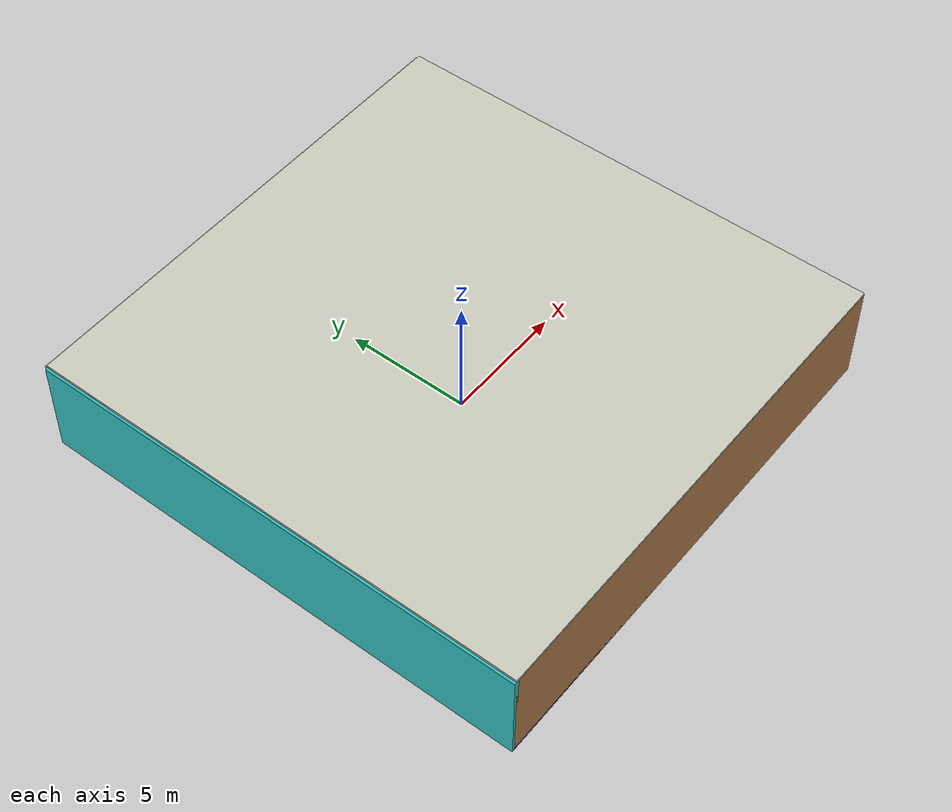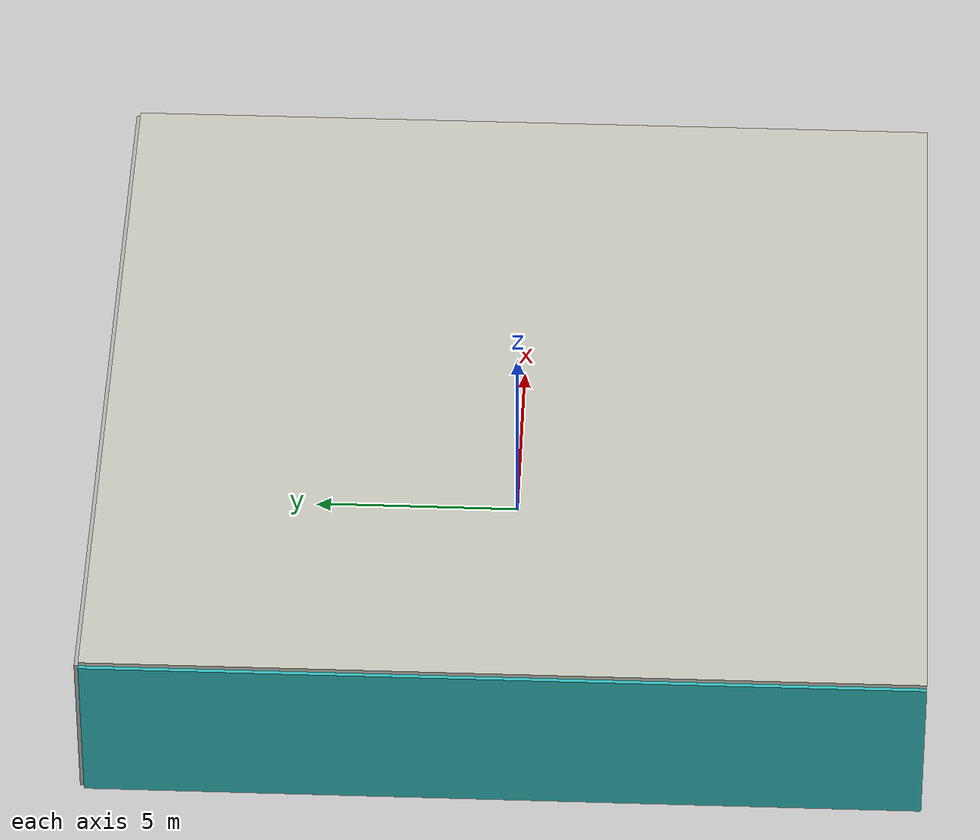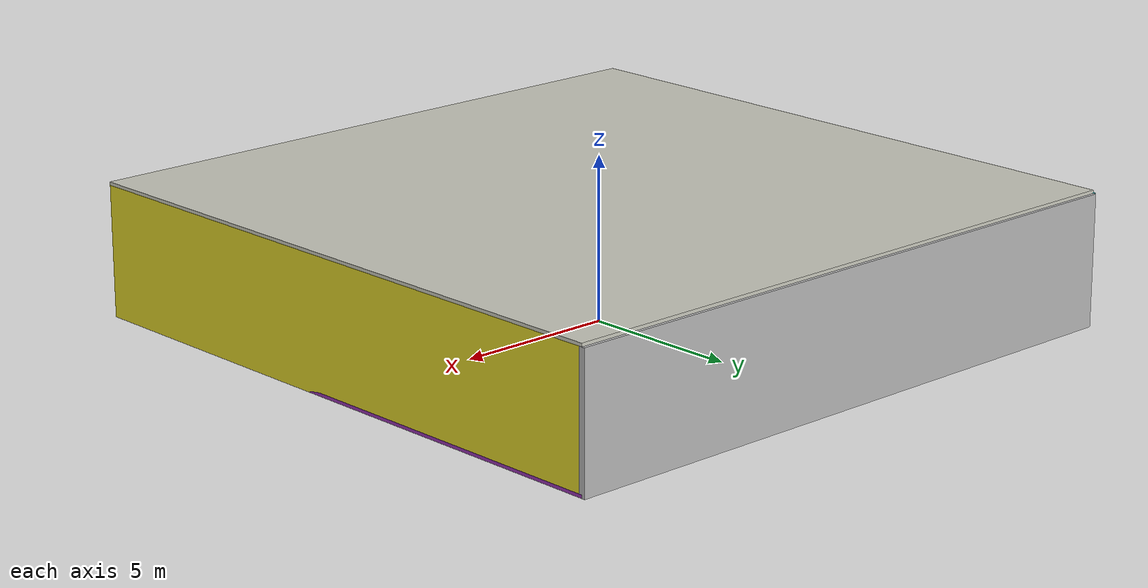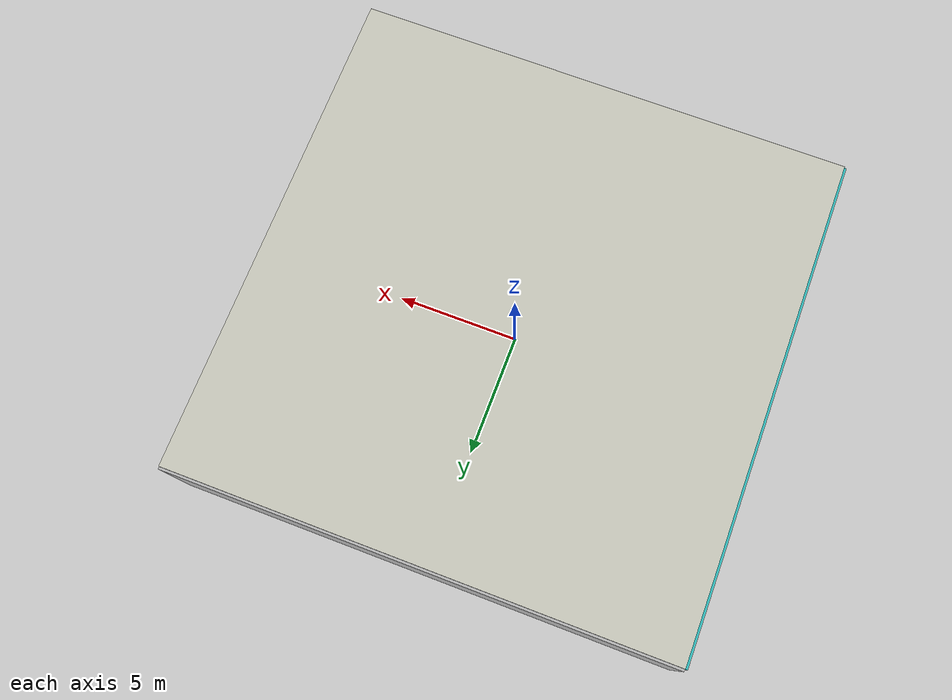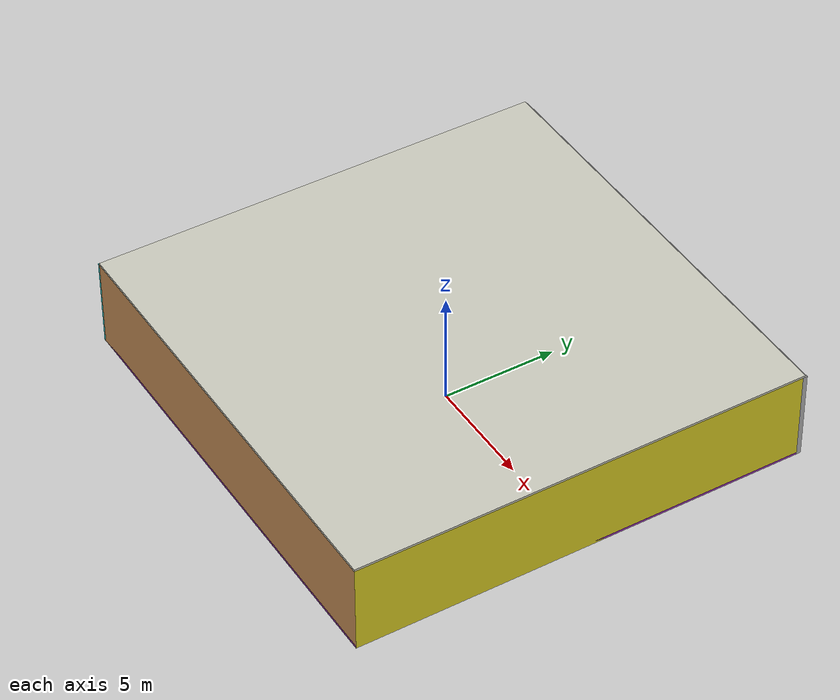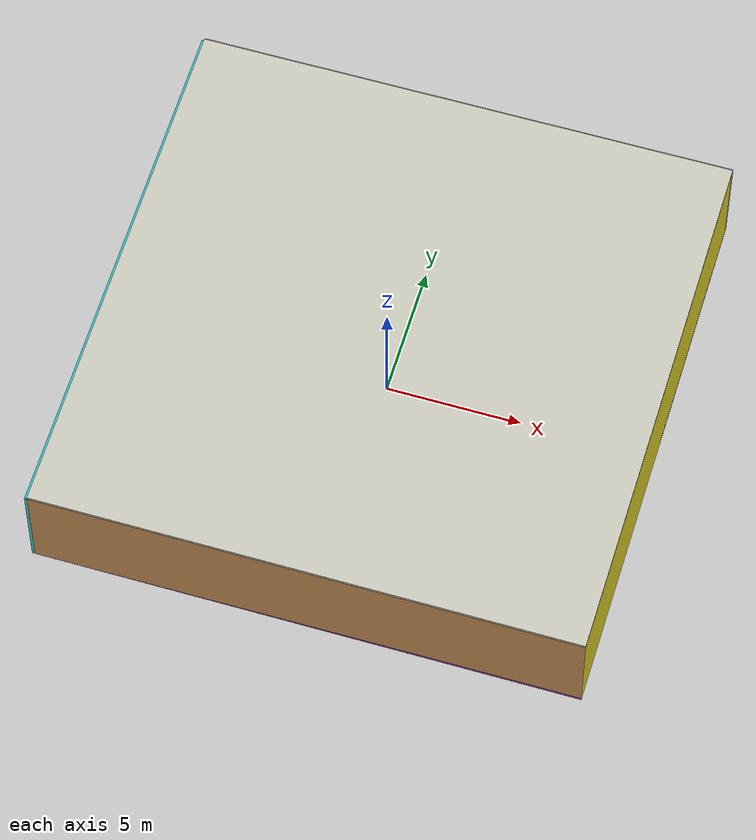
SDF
<sdf version="1.4">
 <world name="default">
  <physics type="ode">
   <max_step_size>0.001</max_step_size>
   <real_time_factor>1</real_time_factor>
   <real_time_update_rate>1000</real_time_update_rate>
   <gravity>0 0 -9.8</gravity>
  </physics>
  <scene><ambient>0.4 0.4 0.4 1</ambient><background>0.7 0.7 0.7 1</background><shadows>1</shadows></scene>
  <model name="Surrounding">
   <static>1</static>
   <link name="Ceiling">
    <collision name="Ceiling_Collision"><geometry><box><size>20 20 0.1</size></box></geometry></collision>
    <visual name="Ceiling_Visual">
     <geometry><box><size>20 20 0.1</size></box></geometry>
     <material>
      <script><uri>file://media/materials/scripts/gazebo.material</uri><name>Gazebo/PaintedWall</name></script>
     </material>
    </visual>
    <pose>0 0 4.05 0 0 0</pose>
   </link>
   <link name="Wall_South">
    <collision name="Wall_South_Collision">
     <geometry><box><size>20 0 4</size></box></geometry>
     <pose>0 0 2 0 -0 0</pose>
    </collision>
    <visual name="Wall_South_Visual">
     <pose>0 0 2 0 -0 0</pose>
     <geometry><box><size>20 0 4</size></box></geometry>
     <material>
      <script><uri>file://media/materials/scripts/gazebo.material</uri><name>Gazebo/WoodFloor</name></script>
     </material>
    </visual>
    <velocity_decay><linear>0</linear><angular>0</angular></velocity_decay>
    <pose>0 -10 0 0 -0 0</pose>
   </link>
   <link name="Wall_East">
    <collision name="Wall_21_Collision">
     <geometry><box><size>20 0 4</size></box></geometry>
     <pose>0 0 2 0 -0 0</pose>
    </collision>
    <visual name="Wall_21_Visual">
     <pose>0 0 2 0 -0 0</pose>
     <geometry><box><size>20 0 4</size></box></geometry>
     <material>
      <script><uri>file://media/materials/scripts/gazebo.material</uri><name>Gazebo/YellowGlow</name></script>
     </material>
    </visual>
    <velocity_decay><linear>0</linear><angular>0</angular></velocity_decay>
    <pose>10 0 0 0 -0 1.5708</pose>
   </link>
   <link name="Wall_North">
    <collision name="Wall_22_Collision">
     <geometry><box><size>20 0.2 4</size></box></geometry>
     <pose>0 0 2 0 -0 0</pose>
    </collision>
    <visual name="Wall_22_Visual">
     <pose>0 0 2 0 -0 0</pose>
     <geometry><box><size>20 0.2 4</size></box></geometry>
     <material>
      <script><uri>file://media/materials/scripts/gazebo.material</uri><name>Gazebo/LightOff</name></script>
     </material>
    </visual>
    <velocity_decay><linear>0</linear><angular>0</angular></velocity_decay>
    <pose>0 10 0 0 -0 0</pose>
   </link>
   <link name="Wall_West">
    <collision name="Wall_23_Collision">
     <geometry><box><size>20 0.2 4</size></box></geometry>
     <pose>0 0 2 0 -0 0</pose>
    </collision>
    <visual name="Wall_23_Visual">
     <pose>0 0 2 0 -0 0</pose>
     <geometry><box><size>20 0.2 4</size></box></geometry>
     <material>
      <script><uri>file://media/materials/scripts/gazebo.material</uri><name>Gazebo/TurquoiseGlow</name></script>
     </material>
    </visual>
    <velocity_decay><linear>0</linear><angular>0</angular></velocity_decay>
    <pose>-10 0 0 0 0 -1.5708</pose>
   </link>
   <link name="Ground_link">
    <collision name="collision">
     <pose>0 0 .05 0 -0 0</pose>
     <geometry><box><size>20 20 0.1</size></box></geometry>
    </collision>
    <visual name="visual">
     <pose>0 0 .05 0 -0 0</pose>
     <geometry><box><size>20 20 0.1</size></box></geometry>
     <material>
      <script><uri>file://media/materials/scripts/gazebo.material</uri><name>Gazebo/Purple</name></script>
     </material>
    </visual>
   </link>
   <static>1</static>
  </model>
  <spherical_coordinates>
   <surface_model>EARTH_WGS84</surface_model>
   <latitude_deg>0</latitude_deg>
   <longitude_deg>0</longitude_deg>
   <elevation>0</elevation>
   <heading_deg>0</heading_deg>
  </spherical_coordinates>
  <light name="lightball_0" type="diffuse">
   <diffuse>0.8 0.8 0.8 1</diffuse>
   <specular>0.2 0.2 0.2 1</specular>
   <attenuation>
    <range>100</range>
    <constant>0.7</constant>
    <linear>0.01</linear>
    <quadratic>0.001</quadratic>
   </attenuation>
   <direction>-0.5 0.1 -0.9</direction>
   <pose>-8.00309793834 0.639562791726 3.16308015273 0 0 0</pose>
  </light>
  <light name="lightball_1" type="diffuse">
   <diffuse>0.8 0.8 0.8 1</diffuse>
   <specular>0.2 0.2 0.2 1</specular>
   <attenuation>
    <range>100</range>
    <constant>0.7</constant>
    <linear>0.01</linear>
    <quadratic>0.001</quadratic>
   </attenuation>
   <direction>-0.5 0.1 -0.9</direction>
   <pose>-0.85685620942 -2.40931426217 3.3060490037 0 0 0</pose>
  </light>
  <light name="lightball_2" type="diffuse">
   <diffuse>0.8 0.8 0.8 1</diffuse>
   <specular>0.2 0.2 0.2 1</specular>
   <attenuation>
    <range>100</range>
    <constant>0.7</constant>
    <linear>0.01</linear>
    <quadratic>0.001</quadratic>
   </attenuation>
   <direction>-0.5 0.1 -0.9</direction>
   <pose>9.2143983341 -4.40585109249 2.22325358431 0 0 0</pose>
  </light>
  <light name="lightball_3" type="diffuse">
   <diffuse>0.8 0.8 0.8 1</diffuse>
   <specular>0.2 0.2 0.2 1</specular>
   <attenuation>
    <range>100</range>
    <constant>0.7</constant>
    <linear>0.01</linear>
    <quadratic>0.001</quadratic>
   </attenuation>
   <direction>-0.5 0.1 -0.9</direction>
   <pose>-3.1295886803 -3.47044515744 1.86647288977 0 0 0</pose>
  </light>
  <light name="lightball_4" type="diffuse">
   <diffuse>0.8 0.8 0.8 1</diffuse>
   <specular>0.2 0.2 0.2 1</specular>
   <attenuation>
    <range>100</range>
    <constant>0.7</constant>
    <linear>0.01</linear>
    <quadratic>0.001</quadratic>
   </attenuation>
   <direction>-0.5 0.1 -0.9</direction>
   <pose>6.15214120433 -8.07713215531 0.682679356067 0 0 0</pose>
  </light>
  <light name="lightball_5" type="diffuse">
   <diffuse>0.8 0.8 0.8 1</diffuse>
   <specular>0.2 0.2 0.2 1</specular>
   <attenuation>
    <range>100</range>
    <constant>0.7</constant>
    <linear>0.01</linear>
    <quadratic>0.001</quadratic>
   </attenuation>
   <direction>-0.5 0.1 -0.9</direction>
   <pose>-2.2934017806 -8.9237403343 0.98440999029 0 0 0</pose>
  </light>
  <include>
   <uri>model://construction_cone</uri>
   <pose>-6.75471150041 4.21199770866 0 0 0 0.668655617264</pose>
  </include>
  <include><uri>model://table</uri><pose>-4.23124366237 6.76305502248 0 0 0 3.01131027255</pose></include>
  <include><uri>model://table</uri><pose>-2.41906451116 -7.32632570327 0 0 0 0.410413409745</pose></include>
  <include>
   <uri>model://robocup_3Dsim_goal</uri>
   <pose>0.998794489129 -2.42387988009 0 0 0 1.42246575101</pose>
  </include>
  <include>
   <uri>model://construction_cone</uri>
   <pose>1.79048158192 1.31462522249 0 0 0 2.21997679873</pose>
  </include>
  <include>
   <uri>model://robocup_3Dsim_goal</uri>
   <pose>1.61939730268 5.34063421098 0 0 0 1.89139977902</pose>
  </include>
  <include>
   <uri>model://robocup_3Dsim_goal</uri>
   <pose>7.8623644768 -6.56903307002 0 0 0 1.58638781511</pose>
  </include>
  <include><uri>model://cabinet</uri><pose>6.57255553711 -2.37180252423 0 0 0 1.17248524657</pose></include>
 </world>
</sdf>

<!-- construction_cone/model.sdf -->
<sdf version="1.5">
  <model name="Construction Cone">
    <link name="link">
      <collision name="collision">
        <geometry>
          <mesh>
            <scale>10 10 10</scale>
            <uri>file://isr-testbed/construction_cone/meshes/construction_cone.dae</uri>
          </mesh>
        </geometry>
      </collision>
      <visual name="visual">
        <geometry>
          <mesh>
            <scale>10 10 10</scale>
            <uri>file://isr-testbed/construction_cone/meshes/construction_cone.dae</uri>
          </mesh>
        </geometry>
      </visual>
    </link>
  </model>
</sdf>

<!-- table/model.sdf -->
<sdf version="1.5">
  <model name="table">
    <static>true</static>
    <link name="link">
      <collision name="surface">
        <pose>0 0 1.0 0 0 0</pose>
        <geometry>
          <box>
            <size>1.5 0.8 0.03</size>
          </box>
        </geometry>
        <surface>
          <friction>
            <ode>
              <mu>0.6</mu>
              <mu2>0.6</mu2>
            </ode>
          </friction>
        </surface>
      </collision>
      <visual name="visual1">
        <pose>0 0 1.0 0 0 0</pose>
        <geometry>
          <box>
            <size>1.5 0.8 0.03</size>
          </box>
        </geometry>
        <material>
          <script>
            <uri>model://media/materials/scripts/gazebo.material</uri>
            <name>Gazebo/Wood</name>
          </script>
        </material>
      </visual>
      <collision name="front_left_leg">
        <pose>0.68 0.38 0.5 0 0 0</pose>
        <geometry>
          <cylinder>
            <radius>0.02</radius>
            <length>1.0</length>
          </cylinder>
        </geometry>
      </collision>
      <visual name="front_left_leg">
        <pose>0.68 0.38 0.5 0 0 0</pose>
        <geometry>
          <cylinder>
            <radius>0.02</radius>
            <length>1.0</length>
          </cylinder>
        </geometry>
        <material>
          <script>
            <uri>model://media/materials/scripts/gazebo.material</uri>
            <name>Gazebo/Grey</name>
          </script>
        </material>
      </visual>
      <collision name="front_right_leg">
        <pose>0.68 -0.38 0.5 0 0 0</pose>
        <geometry>
          <cylinder>
            <radius>0.02</radius>
            <length>1.0</length>
          </cylinder>
        </geometry>
      </collision>
      <visual name="front_right_leg">
        <pose>0.68 -0.38 0.5 0 0 0</pose>
        <geometry>
          <cylinder>
            <radius>0.02</radius>
            <length>1.0</length>
          </cylinder>
        </geometry>
        <material>
          <script>
            <uri>model://media/materials/scripts/gazebo.material</uri>
            <name>Gazebo/Grey</name>
          </script>
        </material>
      </visual>
      <collision name="back_right_leg">
        <pose>-0.68 -0.38 0.5 0 0 0</pose>
        <geometry>
          <cylinder>
            <radius>0.02</radius>
            <length>1.0</length>
          </cylinder>
        </geometry>
      </collision>
      <visual name="back_right_leg">
        <pose>-0.68 -0.38 0.5 0 0 0</pose>
        <geometry>
          <cylinder>
            <radius>0.02</radius>
            <length>1.0</length>
          </cylinder>
        </geometry>
        <material>
          <script>
            <uri>model://media/materials/scripts/gazebo.material</uri>
            <name>Gazebo/Grey</name>
          </script>
        </material>
      </visual>
      <collision name="back_left_leg">
        <pose>-0.68 0.38 0.5 0 0 0</pose>
        <geometry>
          <cylinder>
            <radius>0.02</radius>
            <length>1.0</length>
          </cylinder>
        </geometry>
      </collision>
      <visual name="back_left_leg">
        <pose>-0.68 0.38 0.5 0 0 0</pose>
        <geometry>
          <cylinder>
            <radius>0.02</radius>
            <length>1.0</length>
          </cylinder>
        </geometry>
        <material>
          <script>
            <uri>model://media/materials/scripts/gazebo.material</uri>
            <name>Gazebo/Grey</name>
          </script>
        </material>
      </visual>
    </link>
  </model>
</sdf>

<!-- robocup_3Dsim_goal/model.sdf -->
<sdf version="1.5">
  <model name="robocup_3d_goal">
    <static>true</static>
    <link name="left_post">
      <pose>0 1.05 0.45 0 0 0</pose>
      <collision name="collision">
        <geometry>
          <cylinder>
            <radius>0.05</radius>
            <length>0.9</length>
          </cylinder>
        </geometry>
      </collision>
      <visual name="visual">
        <geometry>
          <cylinder>
            <radius>0.05</radius>
            <length>0.9</length>
          </cylinder>
        </geometry>
        <material>
          <script>
            <uri>file://media/materials/scripts/gazebo.material</uri>
            <name>Gazebo/ZincYellow</name>
          </script>
        </material>
      </visual>
    </link>
    <link name="left_support_horiz_lower">
      <pose>0.30 1.05 0.01 0 0 0</pose>
      <collision name="collision">
        <geometry>
          <box>
            <size>0.50 0.02 0.02</size>
          </box>
        </geometry>
      </collision>
      <visual name="visual">
        <geometry>
          <box>
            <size>0.50 0.02 0.02</size>
          </box>
        </geometry>
        <material>
          <script>
            <uri>file://media/materials/scripts/gazebo.material</uri>
            <name>Gazebo/White</name>
          </script>
        </material>
      </visual>
    </link>
    <link name="left_support_horiz_upper">
      <pose>0.30 1.05 0.79 0 0 0</pose>
      <collision name="collision">
        <geometry>
          <box>
            <size>0.50 0.02 0.02</size>
          </box>
        </geometry>
      </collision>
      <visual name="visual">
        <geometry>
          <box>
            <size>0.50 0.02 0.02</size>
          </box>
        </geometry>
        <material>
          <script>
            <uri>file://media/materials/scripts/gazebo.material</uri>
            <name>Gazebo/White</name>
          </script>
        </material>
      </visual>
    </link>
    <link name="left_support_vertical">
      <pose>0.56 1.05 0.4 0 1.5708 0</pose>
      <collision name="collision">
        <geometry>
          <box>
            <size>0.80 0.02 0.02</size>
          </box>
        </geometry>
      </collision>
      <visual name="visual">
        <geometry>
          <box>
            <size>0.80 0.02 0.02</size>
          </box>
        </geometry>
        <material>
          <script>
            <uri>file://media/materials/scripts/gazebo.material</uri>
            <name>Gazebo/White</name>
          </script>
        </material>
      </visual>
    </link>
    <link name="right_support_horiz_lower">
      <pose>0.30 -1.05 0.01 0 0 0</pose>
      <collision name="collision">
        <geometry>
          <box>
            <size>0.50 0.02 0.02</size>
          </box>
        </geometry>
      </collision>
      <visual name="visual">
        <geometry>
          <box>
            <size>0.50 0.02 0.02</size>
          </box>
        </geometry>
        <material>
          <script>
            <uri>file://media/materials/scripts/gazebo.material</uri>
            <name>Gazebo/White</name>
          </script>
        </material>
      </visual>
    </link>
    <link name="right_support_horiz_upper">
      <pose>0.30 -1.05 0.79 0 0 0</pose>
      <collision name="collision">
        <geometry>
          <box>
            <size>0.50 0.02 0.02</size>
          </box>
        </geometry>
      </collision>
      <visual name="visual">
        <geometry>
          <box>
            <size>0.50 0.02 0.02</size>
          </box>
        </geometry>
        <material>
          <script>
            <uri>file://media/materials/scripts/gazebo.material</uri>
            <name>Gazebo/White</name>
          </script>
        </material>
      </visual>
    </link>
    <link name="right_support_vertical">
      <pose>0.56 -1.05 0.4 0 1.5708 0</pose>
      <collision name="collision">
        <geometry>
          <box>
            <size>0.80 0.02 0.02</size>
          </box>
        </geometry>
      </collision>
      <visual name="visual">
        <geometry>
          <box>
            <size>0.80 0.02 0.02</size>
          </box>
        </geometry>
        <material>
          <script>
            <uri>file://media/materials/scripts/gazebo.material</uri>
            <name>Gazebo/White</name>
          </script>
        </material>
      </visual>
    </link>
    <link name="center_support_horiz_lower">
      <pose>0.56 0 0.01 0 1.5708 0</pose>
      <collision name="collision">
        <geometry>
          <box>
            <size>0.02 2.08 0.02</size>
          </box>
        </geometry>
      </collision>
      <visual name="visual">
        <geometry>
          <box>
            <size>0.02 2.08 0.02</size>
          </box>
        </geometry>
        <material>
          <script>
            <uri>file://media/materials/scripts/gazebo.material</uri>
            <name>Gazebo/White</name>
          </script>
        </material>
      </visual>
    </link>
    <link name="center_support_horiz_upper">
      <pose>0.56 0 0.79 0 1.5708 0</pose>
      <collision name="collision">
        <geometry>
          <box>
            <size>0.02 2.08 0.02</size>
          </box>
        </geometry>
      </collision>
      <visual name="visual">
        <geometry>
          <box>
            <size>0.02 2.08 0.02</size>
          </box>
        </geometry>
        <material>
          <script>
            <uri>file://media/materials/scripts/gazebo.material</uri>
            <name>Gazebo/White</name>
          </script>
        </material>
      </visual>
    </link>
    <link name="right_post">
      <pose>0 -1.05 0.45 0 0 0</pose>
      <collision name="collision">
        <geometry>
          <cylinder>
            <radius>0.05</radius>
            <length>0.9</length>
          </cylinder>
        </geometry>
      </collision>
      <visual name="visual">
        <geometry>
          <cylinder>
            <radius>0.05</radius>
            <length>0.9</length>
          </cylinder>
        </geometry>
        <material>
          <script>
            <uri>file://media/materials/scripts/gazebo.material</uri>
            <name>Gazebo/ZincYellow</name>
          </script>
        </material>
      </visual>
    </link>
    <link name="crossbar">
      <pose>0 0 0.85 1.57 1.57 0</pose>
      <collision name="collision">
        <geometry>
          <cylinder>
            <radius>0.05</radius>
            <length>2.0</length>
          </cylinder>
        </geometry>
      </collision>
      <visual name="visual">
        <geometry>
          <cylinder>
            <radius>0.05</radius>
            <length>2.0</length>
          </cylinder>
        </geometry>
        <material>
          <script>
            <uri>file://media/materials/scripts/gazebo.material</uri>
            <name>Gazebo/ZincYellow</name>
          </script>
        </material>
      </visual>
    </link>
    <link name="center_net">
      <pose>0.56 0 0.40 0 0 0</pose>
      <collision name="collision">
        <geometry>
          <box>
            <size>0.01 2.1 0.80</size>
          </box>
        </geometry>
      </collision>
      <visual name="visual">
        <geometry>
          <box>
            <size>0.01 2.1 0.80</size>
          </box>
        </geometry>
        <material>
          <script>
            <uri>model://../model_source/models/robocup09_spl_field/materials/scripts/</uri>
            <uri>model://../model_source/models/robocup09_spl_field/materials/textures/</uri>
            <name>RoboCup/Net</name>
          </script>
        </material>
      </visual>
    </link>
    <link name="left_net">
      <pose>0.30 1.05 0.40 0 0 0</pose>
      <collision name="collision">
        <geometry>
          <box>
            <size>0.50 0.01 0.76</size>
          </box>
        </geometry>
      </collision>
      <visual name="visual">
        <geometry>
          <box>
            <size>0.50 0.01 0.76</size>
          </box>
        </geometry>
        <material>
          <script>
            <uri>model://../model_source/models/robocup09_spl_field/materials/scripts/</uri>
            <uri>model://../model_source/models/robocup09_spl_field/materials/textures/</uri>
            <name>RoboCup/Net</name>
          </script>
        </material>
      </visual>
    </link>
    <link name="right_net">
      <pose>0.30 -1.05 0.40 0 0 0</pose>
      <collision name="collision">
        <geometry>
          <box>
            <size>0.50 0.01 0.76</size>
          </box>
        </geometry>
      </collision>
      <visual name="visual">
        <geometry>
          <box>
            <size>0.50 0.01 0.76</size>
          </box>
        </geometry>
        <material>
          <script>
            <uri>model://../model_source/models/robocup09_spl_field/materials/scripts/</uri>
            <uri>model://../model_source/models/robocup09_spl_field/materials/textures/</uri>
            <name>RoboCup/Net</name>
          </script>
        </material>
      </visual>
    </link>
  </model>
</sdf>

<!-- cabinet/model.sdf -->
<sdf version="1.5">
  <model name="cabinet">
    <static>true</static>
    <link name="cabinet_bottom_plate">
      <inertial>
        <pose>0 0 -1 0 0 0</pose>
        <inertia>
          <ixx>2.050000</ixx>
          <ixy>0</ixy>
          <ixz>0</ixz>
          <iyy>2.050000</iyy>
          <iyz>0</iyz>
          <izz>2.050000</izz>
        </inertia>
        <mass>25.000000</mass>
      </inertial>
      <collision name="cabinet_bottom_plate_geom">
        <pose>0 0 0.010000 0 0 0</pose>
        <geometry>
          <box>
            <size>0.450000 0.450000 0.020000</size>
          </box>
        </geometry>
      </collision>
      <visual name="cabinet_bottom_plate_geom_visual">
        <pose>0 0 0.010000 0 0 0</pose>
        <geometry>
          <box>
            <size>0.450000 0.450000 0.020000</size>
          </box>
        </geometry>
        <material>
          <script>
            <uri>model://media/materials/scripts/gazebo.material</uri>
            <name>Gazebo/Wood</name>
          </script>
        </material>
      </visual>
      <collision name="cabinet_bottom_plate_geom_cabinet_back_plate">
        <pose>0.235000 0 0.510000 0 0 0</pose>
        <geometry>
          <box>
            <size>0.020000 0.450000 1.020000</size>
          </box>
        </geometry>
      </collision>
      <visual name="cabinet_bottom_plate_geom_cabinet_back_plate_visual">
        <pose>0.235000 0 0.510000 0 0 0</pose>
        <geometry>
          <box>
            <size>0.020000 0.450000 1.020000</size>
          </box>
        </geometry>
        <material>
          <script>
            <uri>model://media/materials/scripts/gazebo.material</uri>
            <name>Gazebo/Wood</name>
          </script>
        </material>
      </visual>
      <collision name="cabinet_bottom_plate_geom_cabinet_left_plate">
        <pose>0 0.235000 0.510000 0 0 0</pose>
        <geometry>
          <box>
            <size>0.450000 0.020000 1.020000</size>
          </box>
        </geometry>
      </collision>
      <visual name="cabinet_bottom_plate_geom_cabinet_left_plate_visual">
        <pose>0 0.235000 0.510000 0 0 0</pose>
        <geometry>
          <box>
            <size>0.450000 0.020000 1.020000</size>
          </box>
        </geometry>
        <material>
          <script>
            <uri>model://media/materials/scripts/gazebo.material</uri>
            <name>Gazebo/Wood</name>
          </script>
        </material>
      </visual>
      <collision name="cabinet_bottom_plate_geom_cabinet_middle_plate">
        <pose>0 0 0.510000 0 0 0</pose>
        <geometry>
          <box>
            <size>0.450000 0.450000 0.020000</size>
          </box>
        </geometry>
      </collision>
      <visual name="cabinet_bottom_plate_geom_cabinet_middle_plate_visual">
        <pose>0 0 0.510000 0 0 0</pose>
        <geometry>
          <box>
            <size>0.450000 0.450000 0.020000</size>
          </box>
        </geometry>
        <material>
          <script>
            <uri>model://media/materials/scripts/gazebo.material</uri>
            <name>Gazebo/Wood</name>
          </script>
        </material>
      </visual>
      <collision name="cabinet_bottom_plate_geom_cabinet_right_plate">
        <pose>0 -0.235000 0.510000 0 0 0</pose>
        <geometry>
          <box>
            <size>0.450000 0.020000 1.020000</size>
          </box>
        </geometry>
      </collision>
      <visual name="cabinet_bottom_plate_geom_cabinet_right_plate_visual">
        <pose>0 -0.235000 0.510000 0 0 0</pose>
        <geometry>
          <box>
            <size>0.450000 0.020000 1.020000</size>
          </box>
        </geometry>
        <material>
          <script>
            <uri>model://media/materials/scripts/gazebo.material</uri>
            <name>Gazebo/Wood</name>
          </script>
        </material>
      </visual>
      <collision name="cabinet_bottom_plate_geom_cabinet_top_plate">
        <pose>0 0 1.010000 0 0 0</pose>
        <geometry>
          <box>
            <size>0.450000 0.450000 0.020000</size>
          </box>
        </geometry>
      </collision>
      <visual name="cabinet_bottom_plate_geom_cabinet_top_plate_visual">
        <pose>0 0 1.010000 0 0 0</pose>
        <geometry>
          <box>
            <size>0.450000 0.450000 0.020000</size>
          </box>
        </geometry>
        <material>
          <script>
            <uri>model://media/materials/scripts/gazebo.material</uri>
            <name>Gazebo/Wood</name>
          </script>
        </material>
      </visual>
    </link>
  </model>
</sdf>
